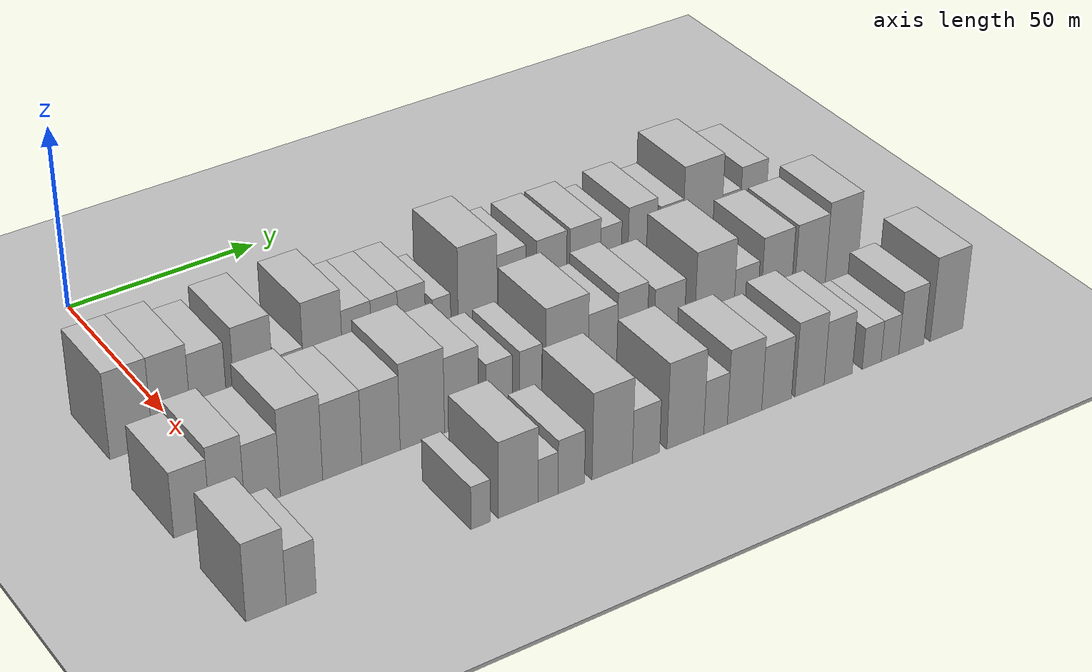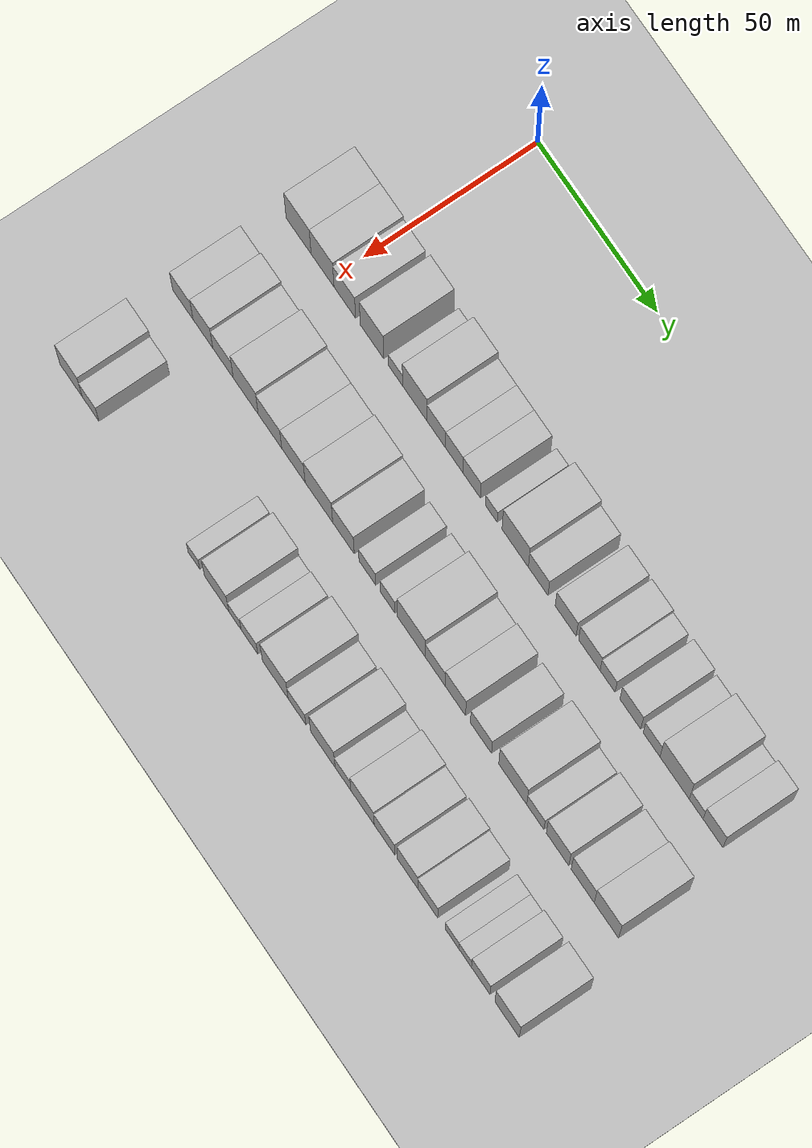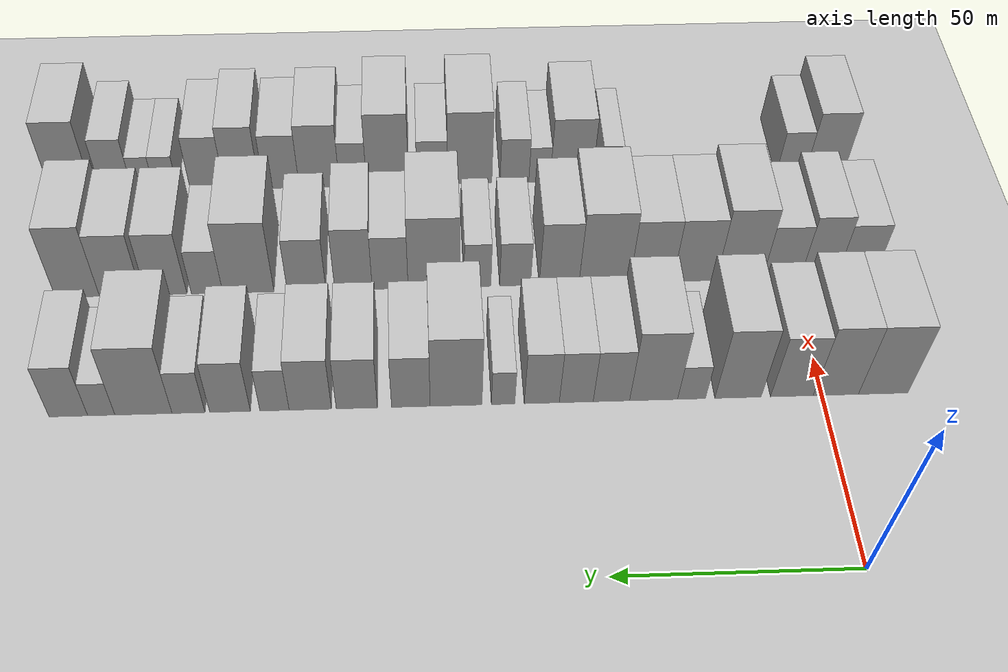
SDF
<sdf version="1.6">
 <world name="default">
  <include><name>ground_plane_1</name><uri>model://HANNAS_ground_plane</uri></include>
  <include>
   <name>ground_plane_2</name>
   <uri>model://HANNAS_ground_plane</uri>
   <pose>100 0 0  0 0 0</pose>
  </include>
  <model name="building_39">
   <static>1</static>
   <pose>50.0000 -12.8616 0 0.000000 0.000000 0.000000</pose>
   <link name="link">
    <pose>0 0 12.00 0 0 0</pose>
    <collision name="collision"><geometry><box><size>20.0000 10.6323 24.0000</size></box></geometry></collision>
    <visual name="visual">
     <cast_shadows>0</cast_shadows>
     <geometry><box><size>20.0000 10.6323 24.0000</size></box></geometry>
     <material>
      <script>
       <uri>model://HANNAS_wall/materials/scripts</uri>
       <uri>model://HANNAS_wall/materials/textures</uri>
       <name>vrc/HANNAS_wall</name>
      </script>
     </material>
    </visual>
   </link>
  </model>
  <model name="building_40">
   <static>1</static>
   <pose>50.0000 -2.6944 0 0.000000 0.000000 0.000000</pose>
   <link name="link">
    <pose>0 0 12.00 0 0 0</pose>
    <collision name="collision"><geometry><box><size>20.0000 9.7022 24.0000</size></box></geometry></collision>
    <visual name="visual">
     <cast_shadows>0</cast_shadows>
     <geometry><box><size>20.0000 9.7022 24.0000</size></box></geometry>
     <material>
      <script>
       <uri>model://HANNAS_wall/materials/scripts</uri>
       <uri>model://HANNAS_wall/materials/textures</uri>
       <name>vrc/HANNAS_wall</name>
      </script>
     </material>
    </visual>
   </link>
  </model>
  <model name="building_41">
   <static>1</static>
   <pose>50.0000 6.7219 0 0.000000 0.000000 0.000000</pose>
   <link name="link">
    <pose>0 0 10.50 0 0 0</pose>
    <collision name="collision"><geometry><box><size>20.0000 9.1302 21.0000</size></box></geometry></collision>
    <visual name="visual">
     <cast_shadows>0</cast_shadows>
     <geometry><box><size>20.0000 9.1302 21.0000</size></box></geometry>
     <material>
      <script>
       <uri>model://HANNAS_wall/materials/scripts</uri>
       <uri>model://HANNAS_wall/materials/textures</uri>
       <name>vrc/HANNAS_wall</name>
      </script>
     </material>
    </visual>
   </link>
  </model>
  <model name="building_42">
   <static>1</static>
   <pose>50.0000 18.2332 0 0.000000 0.000000 0.000000</pose>
   <link name="link">
    <pose>0 0 12.00 0 0 0</pose>
    <collision name="collision"><geometry><box><size>20.0000 9.8925 24.0000</size></box></geometry></collision>
    <visual name="visual">
     <cast_shadows>0</cast_shadows>
     <geometry><box><size>20.0000 9.8925 24.0000</size></box></geometry>
     <material>
      <script>
       <uri>model://HANNAS_wall/materials/scripts</uri>
       <uri>model://HANNAS_wall/materials/textures</uri>
       <name>vrc/HANNAS_wall</name>
      </script>
     </material>
    </visual>
   </link>
  </model>
  <model name="building_43">
   <static>1</static>
   <pose>50.0000 28.1427 0 0.000000 0.000000 0.000000</pose>
   <link name="link">
    <pose>0 0 6.00 0 0 0</pose>
    <collision name="collision"><geometry><box><size>20.0000 5.9265 12.0000</size></box></geometry></collision>
    <visual name="visual">
     <cast_shadows>0</cast_shadows>
     <geometry><box><size>20.0000 5.9265 12.0000</size></box></geometry>
     <material>
      <script>
       <uri>model://HANNAS_wall/materials/scripts</uri>
       <uri>model://HANNAS_wall/materials/textures</uri>
       <name>vrc/HANNAS_wall</name>
      </script>
     </material>
    </visual>
   </link>
  </model>
  <model name="building_44">
   <static>1</static>
   <pose>50.0000 36.2251 0 0.000000 0.000000 0.000000</pose>
   <link name="link">
    <pose>0 0 12.00 0 0 0</pose>
    <collision name="collision"><geometry><box><size>20.0000 10.2384 24.0000</size></box></geometry></collision>
    <visual name="visual">
     <cast_shadows>0</cast_shadows>
     <geometry><box><size>20.0000 10.2384 24.0000</size></box></geometry>
     <material>
      <script>
       <uri>model://HANNAS_wall/materials/scripts</uri>
       <uri>model://HANNAS_wall/materials/textures</uri>
       <name>vrc/HANNAS_wall</name>
      </script>
     </material>
    </visual>
   </link>
  </model>
  <model name="building_45">
   <static>1</static>
   <pose>50.0000 45.2157 0 0.000000 0.000000 0.000000</pose>
   <link name="link">
    <pose>0 0 9.00 0 0 0</pose>
    <collision name="collision"><geometry><box><size>20.0000 7.7429 18.0000</size></box></geometry></collision>
    <visual name="visual">
     <cast_shadows>0</cast_shadows>
     <geometry><box><size>20.0000 7.7429 18.0000</size></box></geometry>
     <material>
      <script>
       <uri>model://HANNAS_wall/materials/scripts</uri>
       <uri>model://HANNAS_wall/materials/textures</uri>
       <name>vrc/HANNAS_wall</name>
      </script>
     </material>
    </visual>
   </link>
  </model>
  <model name="building_46">
   <static>1</static>
   <pose>50.0000 52.6903 0 0.000000 0.000000 0.000000</pose>
   <link name="link">
    <pose>0 0 9.00 0 0 0</pose>
    <collision name="collision"><geometry><box><size>20.0000 7.2062 18.0000</size></box></geometry></collision>
    <visual name="visual">
     <cast_shadows>0</cast_shadows>
     <geometry><box><size>20.0000 7.2062 18.0000</size></box></geometry>
     <material>
      <script>
       <uri>model://HANNAS_wall/materials/scripts</uri>
       <uri>model://HANNAS_wall/materials/textures</uri>
       <name>vrc/HANNAS_wall</name>
      </script>
     </material>
    </visual>
   </link>
  </model>
  <model name="building_47">
   <static>1</static>
   <pose>50.0000 60.0051 0 0.000000 0.000000 0.000000</pose>
   <link name="link">
    <pose>0 0 9.00 0 0 0</pose>
    <collision name="collision"><geometry><box><size>20.0000 7.4235 18.0000</size></box></geometry></collision>
    <visual name="visual">
     <cast_shadows>0</cast_shadows>
     <geometry><box><size>20.0000 7.4235 18.0000</size></box></geometry>
     <material>
      <script>
       <uri>model://HANNAS_wall/materials/scripts</uri>
       <uri>model://HANNAS_wall/materials/textures</uri>
       <name>vrc/HANNAS_wall</name>
      </script>
     </material>
    </visual>
   </link>
  </model>
  <model name="building_48">
   <static>1</static>
   <pose>50.0000 68.1985 0 0.000000 0.000000 0.000000</pose>
   <link name="link">
    <pose>0 0 6.00 0 0 0</pose>
    <collision name="collision"><geometry><box><size>20.0000 4.9632 12.0000</size></box></geometry></collision>
    <visual name="visual">
     <cast_shadows>0</cast_shadows>
     <geometry><box><size>20.0000 4.9632 12.0000</size></box></geometry>
     <material>
      <script>
       <uri>model://HANNAS_wall/materials/scripts</uri>
       <uri>model://HANNAS_wall/materials/textures</uri>
       <name>vrc/HANNAS_wall</name>
      </script>
     </material>
    </visual>
   </link>
  </model>
  <model name="building_49">
   <static>1</static>
   <pose>50.0000 78.1641 0 0.000000 0.000000 0.000000</pose>
   <link name="link">
    <pose>0 0 12.00 0 0 0</pose>
    <collision name="collision"><geometry><box><size>20.0000 10.9681 24.0000</size></box></geometry></collision>
    <visual name="visual">
     <cast_shadows>0</cast_shadows>
     <geometry><box><size>20.0000 10.9681 24.0000</size></box></geometry>
     <material>
      <script>
       <uri>model://HANNAS_wall/materials/scripts</uri>
       <uri>model://HANNAS_wall/materials/textures</uri>
       <name>vrc/HANNAS_wall</name>
      </script>
     </material>
    </visual>
   </link>
  </model>
  <model name="building_50">
   <static>1</static>
   <pose>50.0000 87.7127 0 0.000000 0.000000 0.000000</pose>
   <link name="link">
    <pose>0 0 9.00 0 0 0</pose>
    <collision name="collision"><geometry><box><size>20.0000 8.1291 18.0000</size></box></geometry></collision>
    <visual name="visual">
     <cast_shadows>0</cast_shadows>
     <geometry><box><size>20.0000 8.1291 18.0000</size></box></geometry>
     <material>
      <script>
       <uri>model://HANNAS_wall/materials/scripts</uri>
       <uri>model://HANNAS_wall/materials/textures</uri>
       <name>vrc/HANNAS_wall</name>
      </script>
     </material>
    </visual>
   </link>
  </model>
  <model name="building_51">
   <static>1</static>
   <pose>50.0000 99.1199 0 0.000000 0.000000 0.000000</pose>
   <link name="link">
    <pose>0 0 9.00 0 0 0</pose>
    <collision name="collision"><geometry><box><size>20.0000 8.6852 18.0000</size></box></geometry></collision>
    <visual name="visual">
     <cast_shadows>0</cast_shadows>
     <geometry><box><size>20.0000 8.6852 18.0000</size></box></geometry>
     <material>
      <script>
       <uri>model://HANNAS_wall/materials/scripts</uri>
       <uri>model://HANNAS_wall/materials/textures</uri>
       <name>vrc/HANNAS_wall</name>
      </script>
     </material>
    </visual>
   </link>
  </model>
  <model name="building_52">
   <static>1</static>
   <pose>50.0000 108.9129 0 0.000000 0.000000 0.000000</pose>
   <link name="link">
    <pose>0 0 9.00 0 0 0</pose>
    <collision name="collision"><geometry><box><size>20.0000 8.9007 18.0000</size></box></geometry></collision>
    <visual name="visual">
     <cast_shadows>0</cast_shadows>
     <geometry><box><size>20.0000 8.9007 18.0000</size></box></geometry>
     <material>
      <script>
       <uri>model://HANNAS_wall/materials/scripts</uri>
       <uri>model://HANNAS_wall/materials/textures</uri>
       <name>vrc/HANNAS_wall</name>
      </script>
     </material>
    </visual>
   </link>
  </model>
  <model name="building_53">
   <static>1</static>
   <pose>50.0000 116.4401 0 0.000000 0.000000 0.000000</pose>
   <link name="link">
    <pose>0 0 7.50 0 0 0</pose>
    <collision name="collision"><geometry><box><size>20.0000 6.1538 15.0000</size></box></geometry></collision>
    <visual name="visual">
     <cast_shadows>0</cast_shadows>
     <geometry><box><size>20.0000 6.1538 15.0000</size></box></geometry>
     <material>
      <script>
       <uri>model://HANNAS_wall/materials/scripts</uri>
       <uri>model://HANNAS_wall/materials/textures</uri>
       <name>vrc/HANNAS_wall</name>
      </script>
     </material>
    </visual>
   </link>
  </model>
  <model name="building_54">
   <static>1</static>
   <pose>50.0000 125.7920 0 0.000000 0.000000 0.000000</pose>
   <link name="link">
    <pose>0 0 9.00 0 0 0</pose>
    <collision name="collision"><geometry><box><size>20.0000 8.5500 18.0000</size></box></geometry></collision>
    <visual name="visual">
     <cast_shadows>0</cast_shadows>
     <geometry><box><size>20.0000 8.5500 18.0000</size></box></geometry>
     <material>
      <script>
       <uri>model://HANNAS_wall/materials/scripts</uri>
       <uri>model://HANNAS_wall/materials/textures</uri>
       <name>vrc/HANNAS_wall</name>
      </script>
     </material>
    </visual>
   </link>
  </model>
  <model name="building_55">
   <static>1</static>
   <pose>50.0000 134.5148 0 0.000000 0.000000 0.000000</pose>
   <link name="link">
    <pose>0 0 7.50 0 0 0</pose>
    <collision name="collision"><geometry><box><size>20.0000 6.8956 15.0000</size></box></geometry></collision>
    <visual name="visual">
     <cast_shadows>0</cast_shadows>
     <geometry><box><size>20.0000 6.8956 15.0000</size></box></geometry>
     <material>
      <script>
       <uri>model://HANNAS_wall/materials/scripts</uri>
       <uri>model://HANNAS_wall/materials/textures</uri>
       <name>vrc/HANNAS_wall</name>
      </script>
     </material>
    </visual>
   </link>
  </model>
  <model name="building_56">
   <static>1</static>
   <pose>50.0000 143.9495 0 0.000000 0.000000 0.000000</pose>
   <link name="link">
    <pose>0 0 12.00 0 0 0</pose>
    <collision name="collision"><geometry><box><size>20.0000 11.9737 24.0000</size></box></geometry></collision>
    <visual name="visual">
     <cast_shadows>0</cast_shadows>
     <geometry><box><size>20.0000 11.9737 24.0000</size></box></geometry>
     <material>
      <script>
       <uri>model://HANNAS_wall/materials/scripts</uri>
       <uri>model://HANNAS_wall/materials/textures</uri>
       <name>vrc/HANNAS_wall</name>
      </script>
     </material>
    </visual>
   </link>
  </model>
  <model name="building_57">
   <static>1</static>
   <pose>50.0000 152.7781 0 0.000000 0.000000 0.000000</pose>
   <link name="link">
    <pose>0 0 6.00 0 0 0</pose>
    <collision name="collision"><geometry><box><size>20.0000 5.6834 12.0000</size></box></geometry></collision>
    <visual name="visual">
     <cast_shadows>0</cast_shadows>
     <geometry><box><size>20.0000 5.6834 12.0000</size></box></geometry>
     <material>
      <script>
       <uri>model://HANNAS_wall/materials/scripts</uri>
       <uri>model://HANNAS_wall/materials/textures</uri>
       <name>vrc/HANNAS_wall</name>
      </script>
     </material>
    </visual>
   </link>
  </model>
  <model name="building_58">
   <static>1</static>
   <pose>50.0000 159.6650 0 0.000000 0.000000 0.000000</pose>
   <link name="link">
    <pose>0 0 9.00 0 0 0</pose>
    <collision name="collision"><geometry><box><size>20.0000 8.0905 18.0000</size></box></geometry></collision>
    <visual name="visual">
     <cast_shadows>0</cast_shadows>
     <geometry><box><size>20.0000 8.0905 18.0000</size></box></geometry>
     <material>
      <script>
       <uri>model://HANNAS_wall/materials/scripts</uri>
       <uri>model://HANNAS_wall/materials/textures</uri>
       <name>vrc/HANNAS_wall</name>
      </script>
     </material>
    </visual>
   </link>
  </model>
  <model name="building_120">
   <static>1</static>
   <pose>82.0000 -14.3293 0 0.000000 0.000000 0.000000</pose>
   <link name="link">
    <pose>0 0 9.00 0 0 0</pose>
    <collision name="collision"><geometry><box><size>20.0000 8.7530 18.0000</size></box></geometry></collision>
    <visual name="visual">
     <cast_shadows>0</cast_shadows>
     <geometry><box><size>20.0000 8.7530 18.0000</size></box></geometry>
     <material>
      <script>
       <uri>model://HANNAS_wall/materials/scripts</uri>
       <uri>model://HANNAS_wall/materials/textures</uri>
       <name>vrc/HANNAS_wall</name>
      </script>
     </material>
    </visual>
   </link>
  </model>
  <model name="building_121">
   <static>1</static>
   <pose>82.0000 -5.7515 0 0.000000 0.000000 0.000000</pose>
   <link name="link">
    <pose>0 0 10.50 0 0 0</pose>
    <collision name="collision"><geometry><box><size>20.0000 8.4025 21.0000</size></box></geometry></collision>
    <visual name="visual">
     <cast_shadows>0</cast_shadows>
     <geometry><box><size>20.0000 8.4025 21.0000</size></box></geometry>
     <material>
      <script>
       <uri>model://HANNAS_wall/materials/scripts</uri>
       <uri>model://HANNAS_wall/materials/textures</uri>
       <name>vrc/HANNAS_wall</name>
      </script>
     </material>
    </visual>
   </link>
  </model>
  <model name="building_122">
   <static>1</static>
   <pose>82.0000 2.7932 0 0.000000 0.000000 0.000000</pose>
   <link name="link">
    <pose>0 0 9.00 0 0 0</pose>
    <collision name="collision"><geometry><box><size>20.0000 8.6870 18.0000</size></box></geometry></collision>
    <visual name="visual">
     <cast_shadows>0</cast_shadows>
     <geometry><box><size>20.0000 8.6870 18.0000</size></box></geometry>
     <material>
      <script>
       <uri>model://HANNAS_wall/materials/scripts</uri>
       <uri>model://HANNAS_wall/materials/textures</uri>
       <name>vrc/HANNAS_wall</name>
      </script>
     </material>
    </visual>
   </link>
  </model>
  <model name="building_123">
   <static>1</static>
   <pose>82.0000 12.4283 0 0.000000 0.000000 0.000000</pose>
   <link name="link">
    <pose>0 0 12.00 0 0 0</pose>
    <collision name="collision"><geometry><box><size>20.0000 10.5831 24.0000</size></box></geometry></collision>
    <visual name="visual">
     <cast_shadows>0</cast_shadows>
     <geometry><box><size>20.0000 10.5831 24.0000</size></box></geometry>
     <material>
      <script>
       <uri>model://HANNAS_wall/materials/scripts</uri>
       <uri>model://HANNAS_wall/materials/textures</uri>
       <name>vrc/HANNAS_wall</name>
      </script>
     </material>
    </visual>
   </link>
  </model>
  <model name="building_124">
   <static>1</static>
   <pose>82.0000 22.6753 0 0.000000 0.000000 0.000000</pose>
   <link name="link">
    <pose>0 0 10.50 0 0 0</pose>
    <collision name="collision"><geometry><box><size>20.0000 9.9110 21.0000</size></box></geometry></collision>
    <visual name="visual">
     <cast_shadows>0</cast_shadows>
     <geometry><box><size>20.0000 9.9110 21.0000</size></box></geometry>
     <material>
      <script>
       <uri>model://HANNAS_wall/materials/scripts</uri>
       <uri>model://HANNAS_wall/materials/textures</uri>
       <name>vrc/HANNAS_wall</name>
      </script>
     </material>
    </visual>
   </link>
  </model>
  <model name="building_125">
   <static>1</static>
   <pose>82.0000 32.5608 0 0.000000 0.000000 0.000000</pose>
   <link name="link">
    <pose>0 0 10.50 0 0 0</pose>
    <collision name="collision"><geometry><box><size>20.0000 9.8601 21.0000</size></box></geometry></collision>
    <visual name="visual">
     <cast_shadows>0</cast_shadows>
     <geometry><box><size>20.0000 9.8601 21.0000</size></box></geometry>
     <material>
      <script>
       <uri>model://HANNAS_wall/materials/scripts</uri>
       <uri>model://HANNAS_wall/materials/textures</uri>
       <name>vrc/HANNAS_wall</name>
      </script>
     </material>
    </visual>
   </link>
  </model>
  <model name="building_126">
   <static>1</static>
   <pose>82.0000 43.2886 0 0.000000 0.000000 0.000000</pose>
   <link name="link">
    <pose>0 0 12.00 0 0 0</pose>
    <collision name="collision"><geometry><box><size>20.0000 11.5955 24.0000</size></box></geometry></collision>
    <visual name="visual">
     <cast_shadows>0</cast_shadows>
     <geometry><box><size>20.0000 11.5955 24.0000</size></box></geometry>
     <material>
      <script>
       <uri>model://HANNAS_wall/materials/scripts</uri>
       <uri>model://HANNAS_wall/materials/textures</uri>
       <name>vrc/HANNAS_wall</name>
      </script>
     </material>
    </visual>
   </link>
  </model>
  <model name="building_127">
   <static>1</static>
   <pose>82.0000 53.6057 0 0.000000 0.000000 0.000000</pose>
   <link name="link">
    <pose>0 0 10.50 0 0 0</pose>
    <collision name="collision"><geometry><box><size>20.0000 9.0386 21.0000</size></box></geometry></collision>
    <visual name="visual">
     <cast_shadows>0</cast_shadows>
     <geometry><box><size>20.0000 9.0386 21.0000</size></box></geometry>
     <material>
      <script>
       <uri>model://HANNAS_wall/materials/scripts</uri>
       <uri>model://HANNAS_wall/materials/textures</uri>
       <name>vrc/HANNAS_wall</name>
      </script>
     </material>
    </visual>
   </link>
  </model>
  <model name="building_128">
   <static>1</static>
   <pose>82.0000 63.6280 0 0.000000 0.000000 0.000000</pose>
   <link name="link">
    <pose>0 0 7.50 0 0 0</pose>
    <collision name="collision"><geometry><box><size>20.0000 7.0060 15.0000</size></box></geometry></collision>
    <visual name="visual">
     <cast_shadows>0</cast_shadows>
     <geometry><box><size>20.0000 7.0060 15.0000</size></box></geometry>
     <material>
      <script>
       <uri>model://HANNAS_wall/materials/scripts</uri>
       <uri>model://HANNAS_wall/materials/textures</uri>
       <name>vrc/HANNAS_wall</name>
      </script>
     </material>
    </visual>
   </link>
  </model>
  <model name="building_129">
   <static>1</static>
   <pose>82.0000 72.1640 0 0.000000 0.000000 0.000000</pose>
   <link name="link">
    <pose>0 0 7.50 0 0 0</pose>
    <collision name="collision"><geometry><box><size>20.0000 6.0661 15.0000</size></box></geometry></collision>
    <visual name="visual">
     <cast_shadows>0</cast_shadows>
     <geometry><box><size>20.0000 6.0661 15.0000</size></box></geometry>
     <material>
      <script>
       <uri>model://HANNAS_wall/materials/scripts</uri>
       <uri>model://HANNAS_wall/materials/textures</uri>
       <name>vrc/HANNAS_wall</name>
      </script>
     </material>
    </visual>
   </link>
  </model>
  <model name="building_130">
   <static>1</static>
   <pose>82.0000 82.0512 0 0.000000 0.000000 0.000000</pose>
   <link name="link">
    <pose>0 0 12.00 0 0 0</pose>
    <collision name="collision"><geometry><box><size>20.0000 11.7082 24.0000</size></box></geometry></collision>
    <visual name="visual">
     <cast_shadows>0</cast_shadows>
     <geometry><box><size>20.0000 11.7082 24.0000</size></box></geometry>
     <material>
      <script>
       <uri>model://HANNAS_wall/materials/scripts</uri>
       <uri>model://HANNAS_wall/materials/textures</uri>
       <name>vrc/HANNAS_wall</name>
      </script>
     </material>
    </visual>
   </link>
  </model>
  <model name="building_131">
   <static>1</static>
   <pose>82.0000 91.9675 0 0.000000 0.000000 0.000000</pose>
   <link name="link">
    <pose>0 0 9.00 0 0 0</pose>
    <collision name="collision"><geometry><box><size>20.0000 8.1244 18.0000</size></box></geometry></collision>
    <visual name="visual">
     <cast_shadows>0</cast_shadows>
     <geometry><box><size>20.0000 8.1244 18.0000</size></box></geometry>
     <material>
      <script>
       <uri>model://HANNAS_wall/materials/scripts</uri>
       <uri>model://HANNAS_wall/materials/textures</uri>
       <name>vrc/HANNAS_wall</name>
      </script>
     </material>
    </visual>
   </link>
  </model>
  <model name="building_132">
   <static>1</static>
   <pose>82.0000 100.2681 0 0.000000 0.000000 0.000000</pose>
   <link name="link">
    <pose>0 0 10.50 0 0 0</pose>
    <collision name="collision"><geometry><box><size>20.0000 8.4769 21.0000</size></box></geometry></collision>
    <visual name="visual">
     <cast_shadows>0</cast_shadows>
     <geometry><box><size>20.0000 8.4769 21.0000</size></box></geometry>
     <material>
      <script>
       <uri>model://HANNAS_wall/materials/scripts</uri>
       <uri>model://HANNAS_wall/materials/textures</uri>
       <name>vrc/HANNAS_wall</name>
      </script>
     </material>
    </visual>
   </link>
  </model>
  <model name="building_133">
   <static>1</static>
   <pose>82.0000 110.8708 0 0.000000 0.000000 0.000000</pose>
   <link name="link">
    <pose>0 0 9.00 0 0 0</pose>
    <collision name="collision"><geometry><box><size>20.0000 8.7285 18.0000</size></box></geometry></collision>
    <visual name="visual">
     <cast_shadows>0</cast_shadows>
     <geometry><box><size>20.0000 8.7285 18.0000</size></box></geometry>
     <material>
      <script>
       <uri>model://HANNAS_wall/materials/scripts</uri>
       <uri>model://HANNAS_wall/materials/textures</uri>
       <name>vrc/HANNAS_wall</name>
      </script>
     </material>
    </visual>
   </link>
  </model>
  <model name="building_134">
   <static>1</static>
   <pose>82.0000 124.0056 0 0.000000 0.000000 0.000000</pose>
   <link name="link">
    <pose>0 0 12.00 0 0 0</pose>
    <collision name="collision"><geometry><box><size>20.0000 11.5410 24.0000</size></box></geometry></collision>
    <visual name="visual">
     <cast_shadows>0</cast_shadows>
     <geometry><box><size>20.0000 11.5410 24.0000</size></box></geometry>
     <material>
      <script>
       <uri>model://HANNAS_wall/materials/scripts</uri>
       <uri>model://HANNAS_wall/materials/textures</uri>
       <name>vrc/HANNAS_wall</name>
      </script>
     </material>
    </visual>
   </link>
  </model>
  <model name="building_135">
   <static>1</static>
   <pose>82.0000 133.3144 0 0.000000 0.000000 0.000000</pose>
   <link name="link">
    <pose>0 0 7.50 0 0 0</pose>
    <collision name="collision"><geometry><box><size>20.0000 7.0767 15.0000</size></box></geometry></collision>
    <visual name="visual">
     <cast_shadows>0</cast_shadows>
     <geometry><box><size>20.0000 7.0767 15.0000</size></box></geometry>
     <material>
      <script>
       <uri>model://HANNAS_wall/materials/scripts</uri>
       <uri>model://HANNAS_wall/materials/textures</uri>
       <name>vrc/HANNAS_wall</name>
      </script>
     </material>
    </visual>
   </link>
  </model>
  <model name="building_136">
   <static>1</static>
   <pose>82.0000 142.4510 0 0.000000 0.000000 0.000000</pose>
   <link name="link">
    <pose>0 0 10.50 0 0 0</pose>
    <collision name="collision"><geometry><box><size>20.0000 9.1964 21.0000</size></box></geometry></collision>
    <visual name="visual">
     <cast_shadows>0</cast_shadows>
     <geometry><box><size>20.0000 9.1964 21.0000</size></box></geometry>
     <material>
      <script>
       <uri>model://HANNAS_wall/materials/scripts</uri>
       <uri>model://HANNAS_wall/materials/textures</uri>
       <name>vrc/HANNAS_wall</name>
      </script>
     </material>
    </visual>
   </link>
  </model>
  <model name="building_137">
   <static>1</static>
   <pose>82.0000 152.7873 0 0.000000 0.000000 0.000000</pose>
   <link name="link">
    <pose>0 0 10.50 0 0 0</pose>
    <collision name="collision"><geometry><box><size>20.0000 9.4762 21.0000</size></box></geometry></collision>
    <visual name="visual">
     <cast_shadows>0</cast_shadows>
     <geometry><box><size>20.0000 9.4762 21.0000</size></box></geometry>
     <material>
      <script>
       <uri>model://HANNAS_wall/materials/scripts</uri>
       <uri>model://HANNAS_wall/materials/textures</uri>
       <name>vrc/HANNAS_wall</name>
      </script>
     </material>
    </visual>
   </link>
  </model>
  <model name="building_138">
   <static>1</static>
   <pose>82.0000 162.4746 0 0.000000 0.000000 0.000000</pose>
   <link name="link">
    <pose>0 0 12.00 0 0 0</pose>
    <collision name="collision"><geometry><box><size>20.0000 9.8985 24.0000</size></box></geometry></collision>
    <visual name="visual">
     <cast_shadows>0</cast_shadows>
     <geometry><box><size>20.0000 9.8985 24.0000</size></box></geometry>
     <material>
      <script>
       <uri>model://HANNAS_wall/materials/scripts</uri>
       <uri>model://HANNAS_wall/materials/textures</uri>
       <name>vrc/HANNAS_wall</name>
      </script>
     </material>
    </visual>
   </link>
  </model>
  <model name="building_196">
   <static>1</static>
   <pose>114.0000 -13.8309 0 0.000000 0.000000 0.000000</pose>
   <link name="link">
    <pose>0 0 10.50 0 0 0</pose>
    <collision name="collision"><geometry><box><size>20.0000 9.4668 21.0000</size></box></geometry></collision>
    <visual name="visual">
     <cast_shadows>0</cast_shadows>
     <geometry><box><size>20.0000 9.4668 21.0000</size></box></geometry>
     <material>
      <script>
       <uri>model://HANNAS_wall/materials/scripts</uri>
       <uri>model://HANNAS_wall/materials/textures</uri>
       <name>vrc/HANNAS_wall</name>
      </script>
     </material>
    </visual>
   </link>
  </model>
  <model name="building_197">
   <static>1</static>
   <pose>114.0000 -5.5473 0 0.000000 0.000000 0.000000</pose>
   <link name="link">
    <pose>0 0 7.50 0 0 0</pose>
    <collision name="collision"><geometry><box><size>20.0000 7.1004 15.0000</size></box></geometry></collision>
    <visual name="visual">
     <cast_shadows>0</cast_shadows>
     <geometry><box><size>20.0000 7.1004 15.0000</size></box></geometry>
     <material>
      <script>
       <uri>model://HANNAS_wall/materials/scripts</uri>
       <uri>model://HANNAS_wall/materials/textures</uri>
       <name>vrc/HANNAS_wall</name>
      </script>
     </material>
    </visual>
   </link>
  </model>
  <model name="building_198">
   <static>1</static>
   <pose>114.0000 38.3905 0 0.000000 0.000000 0.000000</pose>
   <link name="link">
    <pose>0 0 6.00 0 0 0</pose>
    <collision name="collision"><geometry><box><size>20.0000 4.9251 12.0000</size></box></geometry></collision>
    <visual name="visual">
     <cast_shadows>0</cast_shadows>
     <geometry><box><size>20.0000 4.9251 12.0000</size></box></geometry>
     <material>
      <script>
       <uri>model://HANNAS_wall/materials/scripts</uri>
       <uri>model://HANNAS_wall/materials/textures</uri>
       <name>vrc/HANNAS_wall</name>
      </script>
     </material>
    </visual>
   </link>
  </model>
  <model name="building_199">
   <static>1</static>
   <pose>114.0000 47.9608 0 0.000000 0.000000 0.000000</pose>
   <link name="link">
    <pose>0 0 10.50 0 0 0</pose>
    <collision name="collision"><geometry><box><size>20.0000 10.2154 21.0000</size></box></geometry></collision>
    <visual name="visual">
     <cast_shadows>0</cast_shadows>
     <geometry><box><size>20.0000 10.2154 21.0000</size></box></geometry>
     <material>
      <script>
       <uri>model://HANNAS_wall/materials/scripts</uri>
       <uri>model://HANNAS_wall/materials/textures</uri>
       <name>vrc/HANNAS_wall</name>
      </script>
     </material>
    </visual>
   </link>
  </model>
  <model name="building_200">
   <static>1</static>
   <pose>114.0000 55.6592 0 0.000000 0.000000 0.000000</pose>
   <link name="link">
    <pose>0 0 6.00 0 0 0</pose>
    <collision name="collision"><geometry><box><size>20.0000 5.1815 12.0000</size></box></geometry></collision>
    <visual name="visual">
     <cast_shadows>0</cast_shadows>
     <geometry><box><size>20.0000 5.1815 12.0000</size></box></geometry>
     <material>
      <script>
       <uri>model://HANNAS_wall/materials/scripts</uri>
       <uri>model://HANNAS_wall/materials/textures</uri>
       <name>vrc/HANNAS_wall</name>
      </script>
     </material>
    </visual>
   </link>
  </model>
  <model name="building_201">
   <static>1</static>
   <pose>114.0000 61.7415 0 0.000000 0.000000 0.000000</pose>
   <link name="link">
    <pose>0 0 7.50 0 0 0</pose>
    <collision name="collision"><geometry><box><size>20.0000 6.9831 15.0000</size></box></geometry></collision>
    <visual name="visual">
     <cast_shadows>0</cast_shadows>
     <geometry><box><size>20.0000 6.9831 15.0000</size></box></geometry>
     <material>
      <script>
       <uri>model://HANNAS_wall/materials/scripts</uri>
       <uri>model://HANNAS_wall/materials/textures</uri>
       <name>vrc/HANNAS_wall</name>
      </script>
     </material>
    </visual>
   </link>
  </model>
  <model name="building_202">
   <static>1</static>
   <pose>114.0000 72.6273 0 0.000000 0.000000 0.000000</pose>
   <link name="link">
    <pose>0 0 12.00 0 0 0</pose>
    <collision name="collision"><geometry><box><size>20.0000 10.7885 24.0000</size></box></geometry></collision>
    <visual name="visual">
     <cast_shadows>0</cast_shadows>
     <geometry><box><size>20.0000 10.7885 24.0000</size></box></geometry>
     <material>
      <script>
       <uri>model://HANNAS_wall/materials/scripts</uri>
       <uri>model://HANNAS_wall/materials/textures</uri>
       <name>vrc/HANNAS_wall</name>
      </script>
     </material>
    </visual>
   </link>
  </model>
  <model name="building_203">
   <static>1</static>
   <pose>114.0000 81.7037 0 0.000000 0.000000 0.000000</pose>
   <link name="link">
    <pose>0 0 7.50 0 0 0</pose>
    <collision name="collision"><geometry><box><size>20.0000 7.3644 15.0000</size></box></geometry></collision>
    <visual name="visual">
     <cast_shadows>0</cast_shadows>
     <geometry><box><size>20.0000 7.3644 15.0000</size></box></geometry>
     <material>
      <script>
       <uri>model://HANNAS_wall/materials/scripts</uri>
       <uri>model://HANNAS_wall/materials/textures</uri>
       <name>vrc/HANNAS_wall</name>
      </script>
     </material>
    </visual>
   </link>
  </model>
  <model name="building_204">
   <static>1</static>
   <pose>114.0000 92.4782 0 0.000000 0.000000 0.000000</pose>
   <link name="link">
    <pose>0 0 12.00 0 0 0</pose>
    <collision name="collision"><geometry><box><size>20.0000 10.1845 24.0000</size></box></geometry></collision>
    <visual name="visual">
     <cast_shadows>0</cast_shadows>
     <geometry><box><size>20.0000 10.1845 24.0000</size></box></geometry>
     <material>
      <script>
       <uri>model://HANNAS_wall/materials/scripts</uri>
       <uri>model://HANNAS_wall/materials/textures</uri>
       <name>vrc/HANNAS_wall</name>
      </script>
     </material>
    </visual>
   </link>
  </model>
  <model name="building_205">
   <static>1</static>
   <pose>114.0000 100.8471 0 0.000000 0.000000 0.000000</pose>
   <link name="link">
    <pose>0 0 7.50 0 0 0</pose>
    <collision name="collision"><geometry><box><size>20.0000 6.5534 15.0000</size></box></geometry></collision>
    <visual name="visual">
     <cast_shadows>0</cast_shadows>
     <geometry><box><size>20.0000 6.5534 15.0000</size></box></geometry>
     <material>
      <script>
       <uri>model://HANNAS_wall/materials/scripts</uri>
       <uri>model://HANNAS_wall/materials/textures</uri>
       <name>vrc/HANNAS_wall</name>
      </script>
     </material>
    </visual>
   </link>
  </model>
  <model name="building_206">
   <static>1</static>
   <pose>114.0000 108.9774 0 0.000000 0.000000 0.000000</pose>
   <link name="link">
    <pose>0 0 10.50 0 0 0</pose>
    <collision name="collision"><geometry><box><size>20.0000 9.7071 21.0000</size></box></geometry></collision>
    <visual name="visual">
     <cast_shadows>0</cast_shadows>
     <geometry><box><size>20.0000 9.7071 21.0000</size></box></geometry>
     <material>
      <script>
       <uri>model://HANNAS_wall/materials/scripts</uri>
       <uri>model://HANNAS_wall/materials/textures</uri>
       <name>vrc/HANNAS_wall</name>
      </script>
     </material>
    </visual>
   </link>
  </model>
  <model name="building_207">
   <static>1</static>
   <pose>114.0000 118.0896 0 0.000000 0.000000 0.000000</pose>
   <link name="link">
    <pose>0 0 9.00 0 0 0</pose>
    <collision name="collision"><geometry><box><size>20.0000 8.5173 18.0000</size></box></geometry></collision>
    <visual name="visual">
     <cast_shadows>0</cast_shadows>
     <geometry><box><size>20.0000 8.5173 18.0000</size></box></geometry>
     <material>
      <script>
       <uri>model://HANNAS_wall/materials/scripts</uri>
       <uri>model://HANNAS_wall/materials/textures</uri>
       <name>vrc/HANNAS_wall</name>
      </script>
     </material>
    </visual>
   </link>
  </model>
  <model name="building_208">
   <static>1</static>
   <pose>114.0000 127.5906 0 0.000000 0.000000 0.000000</pose>
   <link name="link">
    <pose>0 0 10.50 0 0 0</pose>
    <collision name="collision"><geometry><box><size>20.0000 8.4847 21.0000</size></box></geometry></collision>
    <visual name="visual">
     <cast_shadows>0</cast_shadows>
     <geometry><box><size>20.0000 8.4847 21.0000</size></box></geometry>
     <material>
      <script>
       <uri>model://HANNAS_wall/materials/scripts</uri>
       <uri>model://HANNAS_wall/materials/textures</uri>
       <name>vrc/HANNAS_wall</name>
      </script>
     </material>
    </visual>
   </link>
  </model>
  <model name="building_209">
   <static>1</static>
   <pose>114.0000 135.9464 0 0.000000 0.000000 0.000000</pose>
   <link name="link">
    <pose>0 0 9.00 0 0 0</pose>
    <collision name="collision"><geometry><box><size>20.0000 8.2270 18.0000</size></box></geometry></collision>
    <visual name="visual">
     <cast_shadows>0</cast_shadows>
     <geometry><box><size>20.0000 8.2270 18.0000</size></box></geometry>
     <material>
      <script>
       <uri>model://HANNAS_wall/materials/scripts</uri>
       <uri>model://HANNAS_wall/materials/textures</uri>
       <name>vrc/HANNAS_wall</name>
      </script>
     </material>
    </visual>
   </link>
  </model>
  <model name="building_210">
   <static>1</static>
   <pose>114.0000 145.8695 0 0.000000 0.000000 0.000000</pose>
   <link name="link">
    <pose>0 0 6.00 0 0 0</pose>
    <collision name="collision"><geometry><box><size>20.0000 5.6192 12.0000</size></box></geometry></collision>
    <visual name="visual">
     <cast_shadows>0</cast_shadows>
     <geometry><box><size>20.0000 5.6192 12.0000</size></box></geometry>
     <material>
      <script>
       <uri>model://HANNAS_wall/materials/scripts</uri>
       <uri>model://HANNAS_wall/materials/textures</uri>
       <name>vrc/HANNAS_wall</name>
      </script>
     </material>
    </visual>
   </link>
  </model>
  <model name="building_211">
   <static>1</static>
   <pose>114.0000 151.3194 0 0.000000 0.000000 0.000000</pose>
   <link name="link">
    <pose>0 0 6.00 0 0 0</pose>
    <collision name="collision"><geometry><box><size>20.0000 5.2807 12.0000</size></box></geometry></collision>
    <visual name="visual">
     <cast_shadows>0</cast_shadows>
     <geometry><box><size>20.0000 5.2807 12.0000</size></box></geometry>
     <material>
      <script>
       <uri>model://HANNAS_wall/materials/scripts</uri>
       <uri>model://HANNAS_wall/materials/textures</uri>
       <name>vrc/HANNAS_wall</name>
      </script>
     </material>
    </visual>
   </link>
  </model>
  <model name="building_212">
   <static>1</static>
   <pose>114.0000 157.7589 0 0.000000 0.000000 0.000000</pose>
   <link name="link">
    <pose>0 0 9.00 0 0 0</pose>
    <collision name="collision"><geometry><box><size>20.0000 7.5981 18.0000</size></box></geometry></collision>
    <visual name="visual">
     <cast_shadows>0</cast_shadows>
     <geometry><box><size>20.0000 7.5981 18.0000</size></box></geometry>
     <material>
      <script>
       <uri>model://HANNAS_wall/materials/scripts</uri>
       <uri>model://HANNAS_wall/materials/textures</uri>
       <name>vrc/HANNAS_wall</name>
      </script>
     </material>
    </visual>
   </link>
  </model>
  <model name="building_213">
   <static>1</static>
   <pose>114.0000 168.5444 0 0.000000 0.000000 0.000000</pose>
   <link name="link">
    <pose>0 0 12.00 0 0 0</pose>
    <collision name="collision"><geometry><box><size>20.0000 9.9730 24.0000</size></box></geometry></collision>
    <visual name="visual">
     <cast_shadows>0</cast_shadows>
     <geometry><box><size>20.0000 9.9730 24.0000</size></box></geometry>
     <material>
      <script>
       <uri>model://HANNAS_wall/materials/scripts</uri>
       <uri>model://HANNAS_wall/materials/textures</uri>
       <name>vrc/HANNAS_wall</name>
      </script>
     </material>
    </visual>
   </link>
  </model>
 </world>
</sdf>
